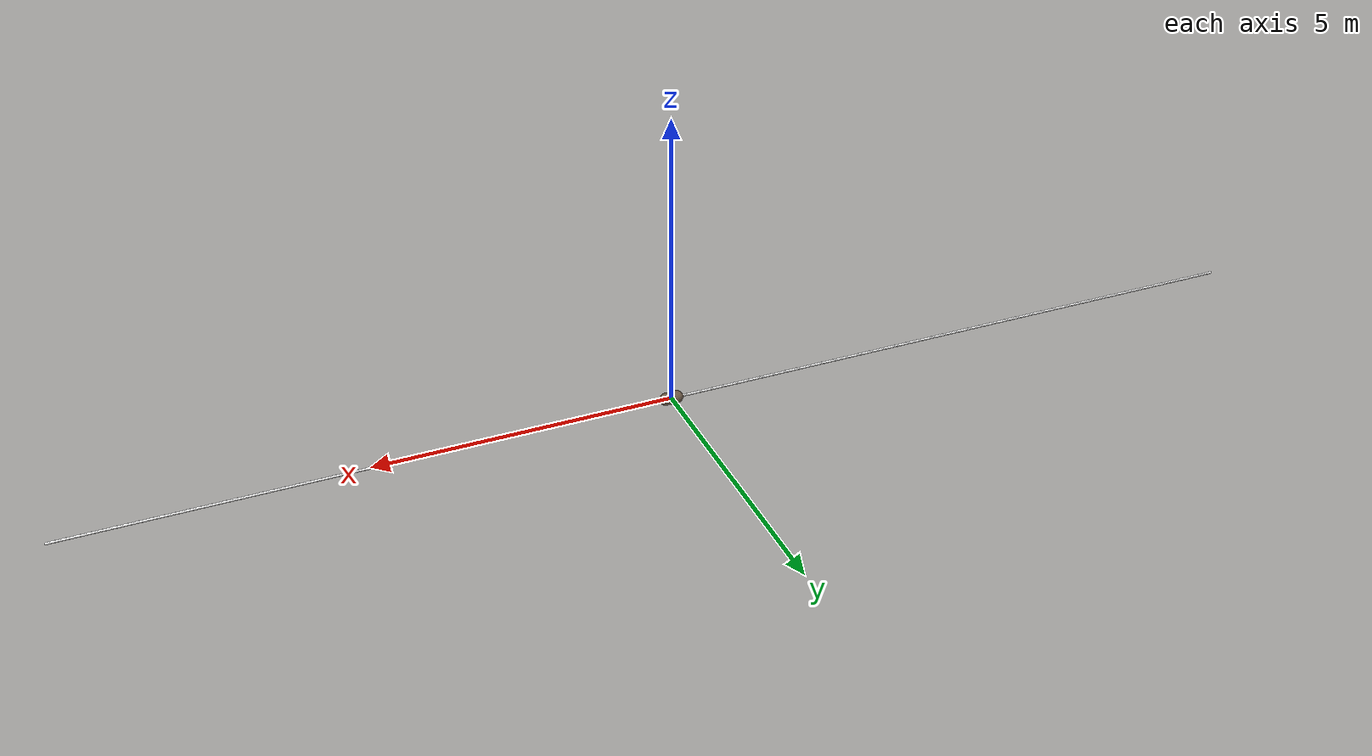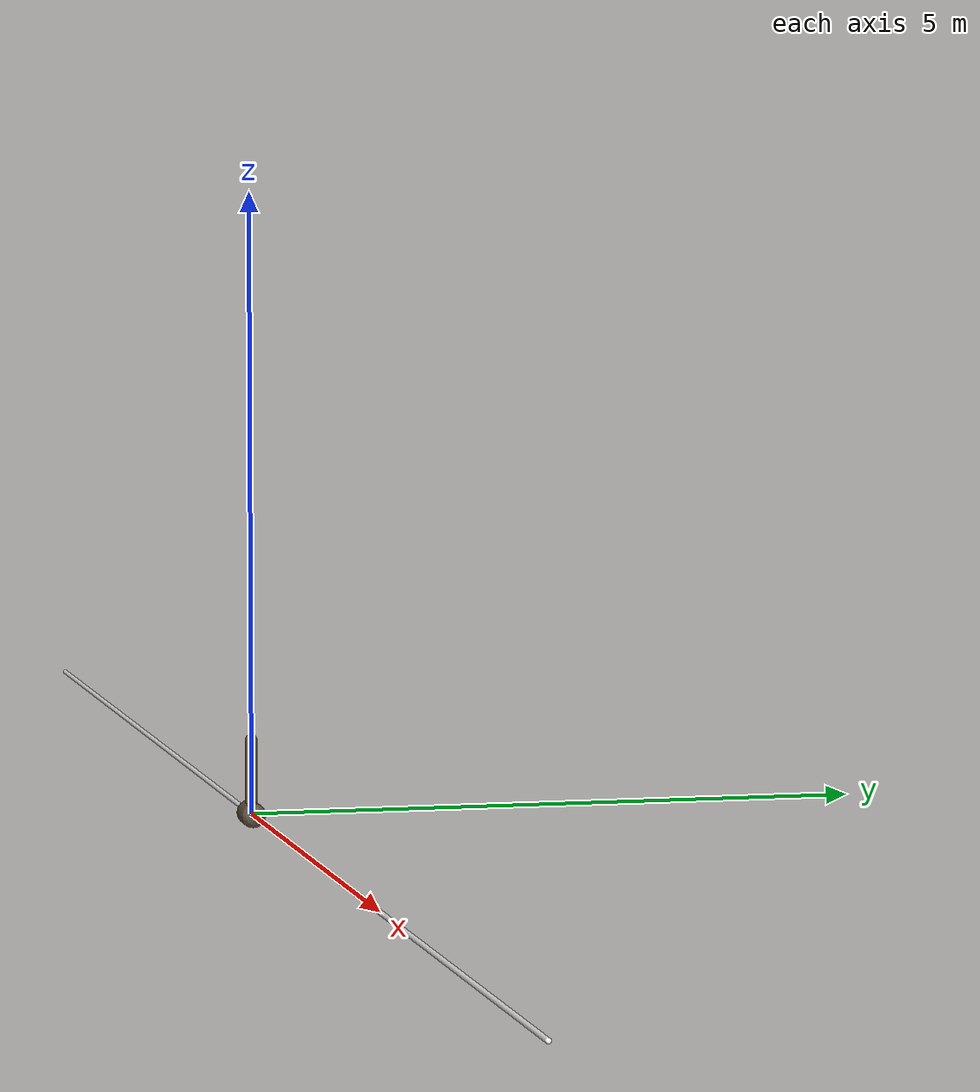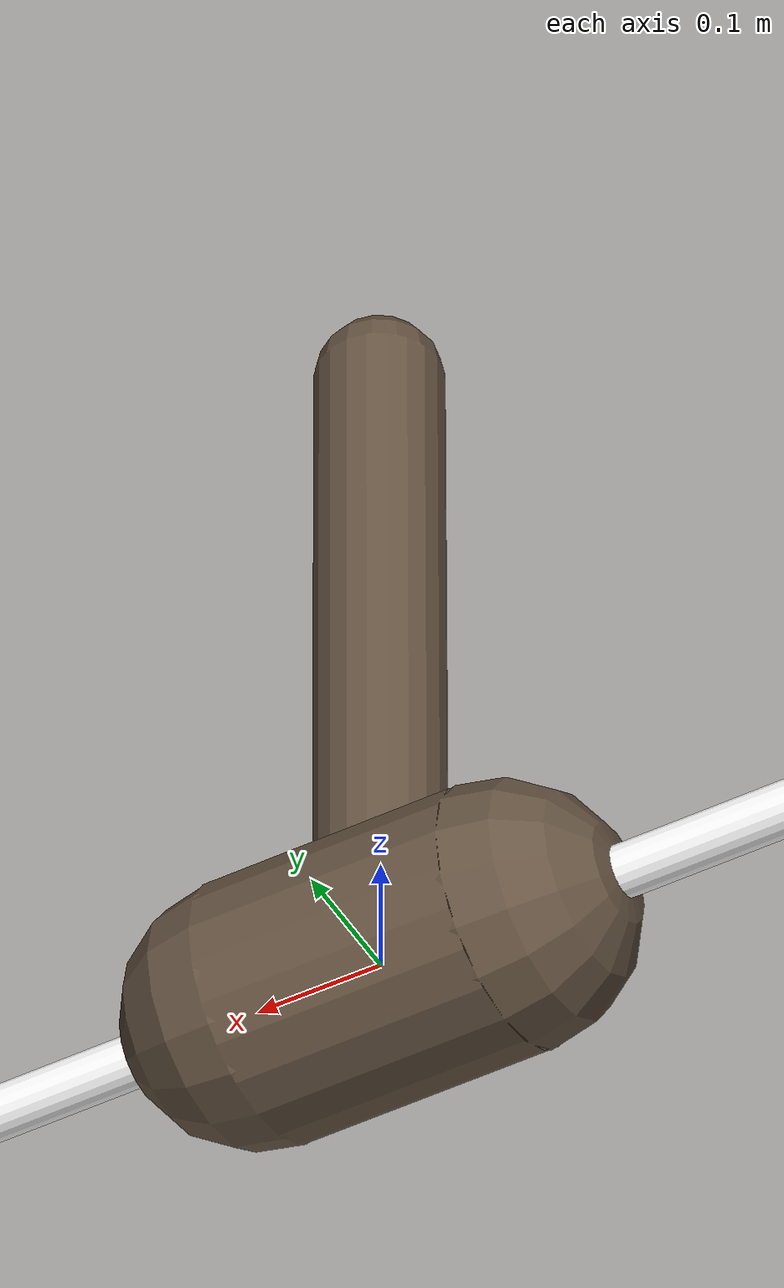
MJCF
<mujoco model="inverted pendulum">
  <compiler inertiafromgeom="true"/>
  <default>
  <!-- this is one here is the pendulum swingin, if set to true does the bouncy thing-->
    <joint armature="0" damping="1" limited="false"/>
    <geom contype="0" friction="1 0.1 0.1" rgba="0.4 0.33 0.26 1.0"/>
    <tendon/>
    <motor ctrlrange="-3 3"/>
  </default>
  <option gravity="0 0 -5.0" timestep="0.02" />
  <custom>
    <!-- brax custom params -->
    <numeric data="10000" name="constraint_stiffness"/>
    <numeric data="10000" name="constraint_limit_stiffness"/>
    <numeric data="0" name="spring_mass_scale"/>
    <numeric data="1" name="spring_inertia_scale"/>
    <numeric data="5" name="solver_maxls"/>
  </custom>
  <size nstack="3000"/>
  <worldbody>
    <light diffuse=".5 .5 .5" pos="0 0 3" dir="0 0 -1"/>
    <!--geom name="ground" type="plane" pos="0 0 0" /-->
    <!-- this down here is the geometry of the rail, second element of size is the length, I think this is purely cosmetic-->
    <geom name="rail" pos="0 0 0" quat="0.707 0 0.707 0" size="0.02 10" type="capsule" rgba="1 1 1 1"/>

    <!-- this here is the actual cart and relevant things for physics, the -10,10 is the range of the cart, like how far right left can it go-->
    <body name="cart" pos="0 0 0">
      <joint axis="1 0 0" limited="true" name="slider" pos="0 0 0" range="-10 10" type="slide"/>
      <geom name="cart" pos="0 0 0" quat="0.707 0 0.707 0" size="0.1 0.1" type="capsule"/>
      <body name="pole" pos="0 0 0">
        <joint axis="0 1 0" name="hinge" pos="0 0 0" range="-90 90" type="hinge"/>
        <geom fromto="0 0 0 0.001 0 0.6" name="cpole" size="0.049 0.3" type="capsule"/>
      </body>
    </body>
  </worldbody>
  <actuator>
    <motor ctrllimited="true" ctrlrange="-3 3" gear="100" joint="slider" name="slide"/>
  </actuator>
</mujoco>
